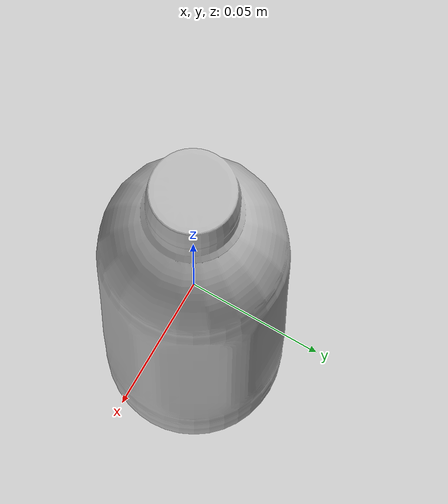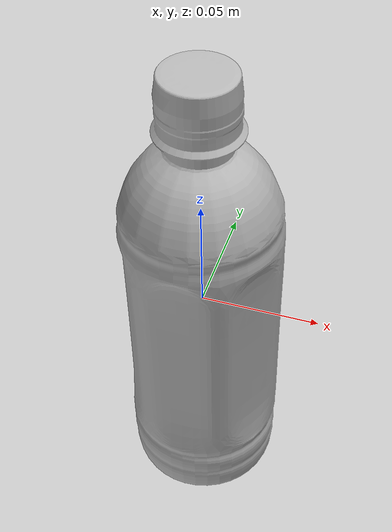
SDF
<?xml version="1.0"?>
<sdf version='1.6'>
  <model name='tea_bottle'>
    <link name='tea_bottle'>
      <!-- The inertia is computed assuming uniform density
           cylinder, and the mass is obtained by weighing a full bottle. -->
      <!-- TODO(siyuan): Check dimension and inertia consistency with reality
           and mesh. -->
      <inertial>
        <pose>0 0 0 0 0 0</pose>
        <mass>0.540</mass>
        <inertia>
          <ixx> 0.00205221375 </ixx>
          <ixy> 0 </ixy>
          <ixz> 0 </ixz>
          <iyy> 0.00205221375 </iyy>
          <iyz> 0 </iyz>
          <izz> 0.0002851875 </izz>
        </inertia>
      </inertial>

      <visual name='mesh'>
        <pose>0.0 0.0 0.0 0.0 -0.0 0.0</pose>
        <geometry>
          <mesh>
            <scale>0.001 0.001 0.001</scale>
            <uri>tea_bottle.obj</uri>
          </mesh>
        </geometry>
      </visual>

      <collision name='collision_cylinder'>
        <geometry>
          <cylinder>
            <radius>.0325</radius>
            <length>.206</length>
          </cylinder>
        </geometry>
      </collision>

      <collision name="bottom_sphere_collision_0">
        <pose>.0325 0 -0.104 0 0 0</pose>
        <geometry>
          <sphere>
            <radius>2e-3</radius>
          </sphere>
        </geometry>
      </collision>

      <collision name="bottom_sphere_collision_1">
        <pose>0 .0325 -0.104 0 0 0</pose>
        <geometry>
          <sphere>
            <radius>2e-3</radius>
          </sphere>
        </geometry>
      </collision>

      <collision name="bottom_sphere_collision_2">
        <pose>-0.0325 0 -0.104 0 0 0</pose>
        <geometry>
          <sphere>
            <radius>2e-3</radius>
          </sphere>
        </geometry>
      </collision>

      <collision name="bottom_sphere_collision_3">
        <pose>0 -0.0325 -0.104 0 0 0</pose>
        <geometry>
          <sphere>
            <radius>2e-3</radius>
          </sphere>
        </geometry>
      </collision>

      <collision name="bottom_sphere_collision_4">
        <pose>0.02298 0.02298 -0.104 0 0 0</pose>
        <geometry>
          <sphere>
            <radius>2e-3</radius>
          </sphere>
        </geometry>
      </collision>

      <collision name="bottom_sphere_collision_5">
        <pose>0.02298 -0.02298 -0.104 0 0 0</pose>
        <geometry>
          <sphere>
            <radius>2e-3</radius>
          </sphere>
        </geometry>
      </collision>

      <collision name="bottom_sphere_collision_6">
        <pose>-0.02298 0.02298 -0.104 0 0 0</pose>
        <geometry>
          <sphere>
            <radius>2e-3</radius>
          </sphere>
        </geometry>
      </collision>

      <collision name="bottom_sphere_collision_7">
        <pose>-0.02298 -0.02298 -0.104 0 0 0</pose>
        <geometry>
          <sphere>
            <radius>2e-3</radius>
          </sphere>
        </geometry>
      </collision>

      <collision name="top_sphere_collision_0">
        <pose>.0325 0 0.104 0 0 0</pose>
        <geometry>
          <sphere>
            <radius>2e-3</radius>
          </sphere>
        </geometry>
      </collision>

      <collision name="top_sphere_collision_1">
        <pose>0 .0325 0.104 0 0 0</pose>
        <geometry>
          <sphere>
            <radius>2e-3</radius>
          </sphere>
        </geometry>
      </collision>

      <collision name="top_sphere_collision_2">
        <pose>-0.0325 0 0.104 0 0 0</pose>
        <geometry>
          <sphere>
            <radius>2e-3</radius>
          </sphere>
        </geometry>
      </collision>

      <collision name="top_sphere_collision_3">
        <pose>0 -0.0325 0.104 0 0 0</pose>
        <geometry>
          <sphere>
            <radius>2e-3</radius>
          </sphere>
        </geometry>
      </collision>

      <collision name="top_sphere_collision_4">
        <pose>0.02298 0.02298 0.104 0 0 0</pose>
        <geometry>
          <sphere>
            <radius>2e-3</radius>
          </sphere>
        </geometry>
      </collision>

      <collision name="top_sphere_collision_5">
        <pose>0.02298 -0.02298 0.104 0 0 0</pose>
        <geometry>
          <sphere>
            <radius>2e-3</radius>
          </sphere>
        </geometry>
      </collision>

      <collision name="top_sphere_collision_6">
        <pose>-0.02298 0.02298 0.104 0 0 0</pose>
        <geometry>
          <sphere>
            <radius>2e-3</radius>
          </sphere>
        </geometry>
      </collision>

      <collision name="top_sphere_collision_7">
        <pose>-0.02298 -0.02298 0.104 0 0 0</pose>
        <geometry>
          <sphere>
            <radius>2e-3</radius>
          </sphere>
        </geometry>
      </collision>
    </link>
  </model>
</sdf>
